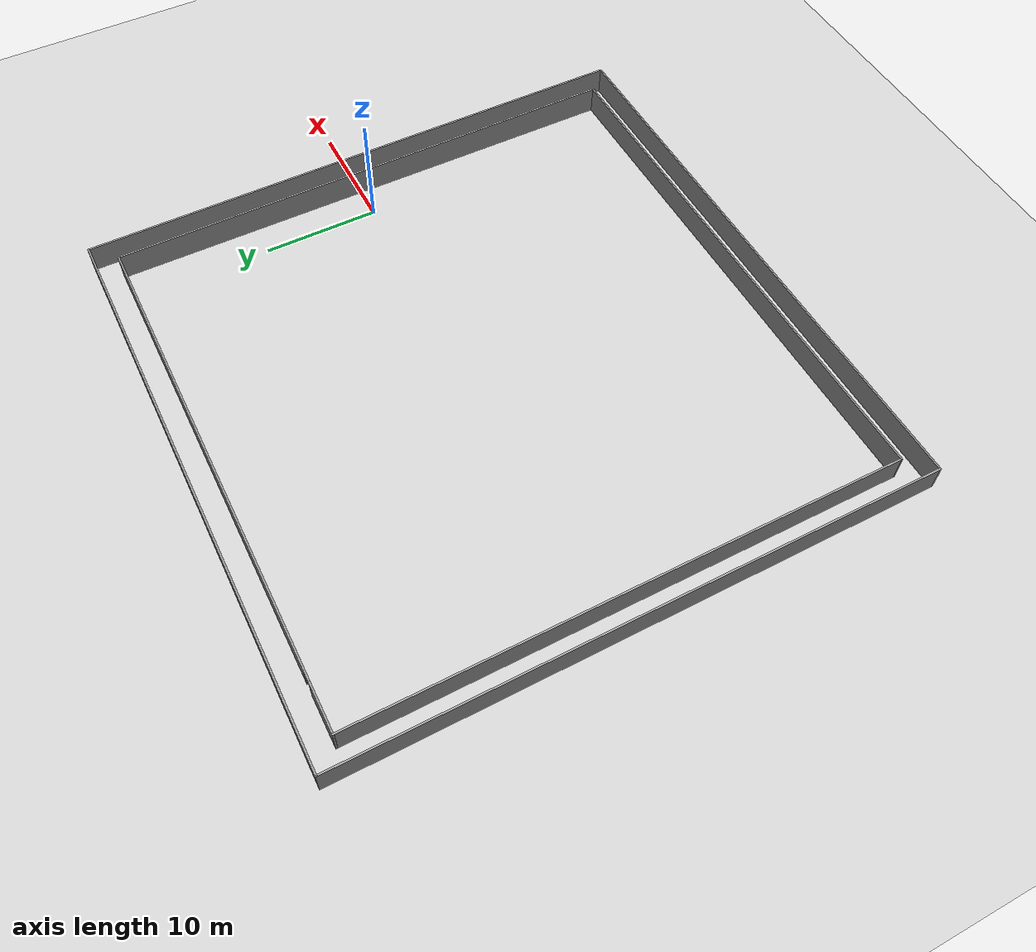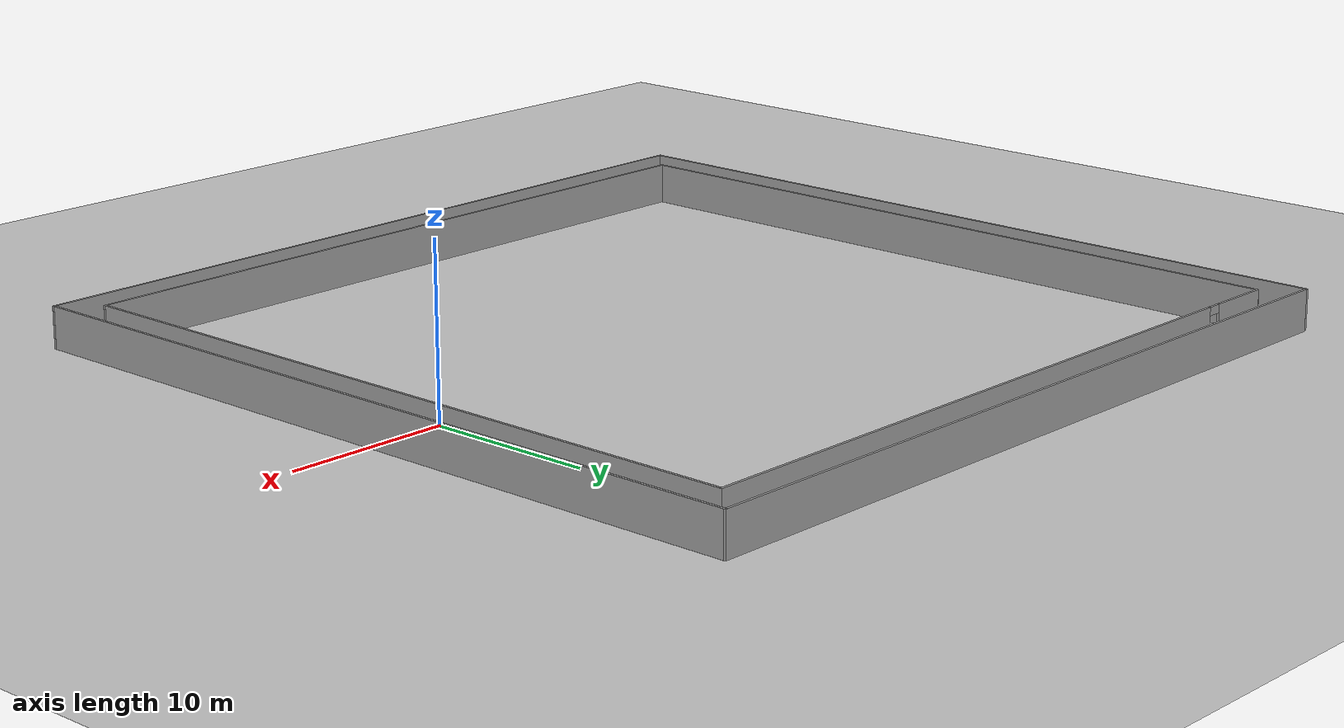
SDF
<sdf version="1.4">
 <world name="default">
  <light name="sun" type="directional">
   <pose>0 0 10 0 -0 0</pose>
   <diffuse>0.8 0.8 0.8 1</diffuse>
   <specular>0.2 0.2 0.2 1</specular>
   <attenuation>
    <range>1000</range>
    <constant>0.9</constant>
    <linear>0.01</linear>
    <quadratic>0.001</quadratic>
   </attenuation>
   <direction>-0.5 0.1 -0.9</direction>
  </light>
  <model name="ground_plane">
   <static>1</static>
   <link name="link">
    <collision name="collision">
     <geometry><plane><normal>0 0 1</normal><size>100 100</size></plane></geometry>
     <surface><friction><ode><mu>100</mu><mu2>50</mu2></ode></friction></surface>
    </collision>
    <visual name="visual">
     <cast_shadows>0</cast_shadows>
     <geometry><plane><normal>0 0 1</normal><size>100 100</size></plane></geometry>
     <material>
      <script><uri>file://media/materials/scripts/gazebo.material</uri><name>Gazebo/Grey</name></script>
     </material>
    </visual>
   </link>
  </model>
  <physics name="default_physics" default="0" type="ode">
   <max_step_size>0.001</max_step_size>
   <real_time_factor>1</real_time_factor>
   <real_time_update_rate>1000</real_time_update_rate>
   <gravity>0 0 -9.8</gravity>
  </physics>
  <scene><ambient>0.4 0.4 0.4 1</ambient><background>0.7 0.7 0.7 1</background><shadows>1</shadows></scene>
  <spherical_coordinates>
   <surface_model>EARTH_WGS84</surface_model>
   <latitude_deg>0</latitude_deg>
   <longitude_deg>0</longitude_deg>
   <elevation>0</elevation>
   <heading_deg>0</heading_deg>
  </spherical_coordinates>
  <model name="Rooms">
   <pose>-20.0679 -1.004 0 0 -0 0</pose>
   <link name="Wall_10">
    <pose>-0.000115 22.925 0 0 -0 0</pose>
    <visual name="Wall_10_Visual_0">
     <pose>-20.9482 0 1.25 0 -0 0</pose>
     <geometry><box><size>4.1036 0.15 2.5</size></box></geometry>
     <material>
      <script><uri>file://media/materials/scripts/gazebo.material</uri><name>Gazebo/Grey</name></script>
      <ambient>1 1 1 1</ambient>
     </material>
    </visual>
    <collision name="Wall_10_Collision_0">
     <geometry><box><size>4.1036 0.15 2.5</size></box></geometry>
     <pose>-20.9482 0 1.25 0 -0 0</pose>
    </collision>
    <visual name="Wall_10_Visual_1">
     <pose>2.5018 0 1.25 0 -0 0</pose>
     <geometry><box><size>40.9964 0.15 2.5</size></box></geometry>
     <material>
      <script><uri>file://media/materials/scripts/gazebo.material</uri><name>Gazebo/Grey</name></script>
      <ambient>1 1 1 1</ambient>
     </material>
    </visual>
    <collision name="Wall_10_Collision_1">
     <geometry><box><size>40.9964 0.15 2.5</size></box></geometry>
     <pose>2.5018 0 1.25 0 -0 0</pose>
    </collision>
    <visual name="Wall_10_Visual_2">
     <pose>-18.4464 0 2.25 0 -0 0</pose>
     <geometry><box><size>0.9 0.15 0.5</size></box></geometry>
     <material>
      <script><uri>file://media/materials/scripts/gazebo.material</uri><name>Gazebo/Grey</name></script>
      <ambient>1 1 1 1</ambient>
     </material>
    </visual>
    <collision name="Wall_10_Collision_2">
     <geometry><box><size>0.9 0.15 0.5</size></box></geometry>
     <pose>-18.4464 0 2.25 0 -0 0</pose>
    </collision>
   </link>
   <link name="Wall_11">
    <collision name="Wall_11_Collision">
     <geometry><box><size>46 0.15 2.5</size></box></geometry>
     <pose>0 0 1.25 0 -0 0</pose>
    </collision>
    <visual name="Wall_11_Visual">
     <pose>0 0 1.25 0 -0 0</pose>
     <geometry><box><size>46 0.15 2.5</size></box></geometry>
     <material>
      <script><uri>file://media/materials/scripts/gazebo.material</uri><name>Gazebo/Grey</name></script>
      <ambient>1 1 1 1</ambient>
     </material>
    </visual>
    <pose>22.9249 -0 0 0 0 -1.5708</pose>
   </link>
   <link name="Wall_12">
    <collision name="Wall_12_Collision">
     <geometry><box><size>46 0.15 2.5</size></box></geometry>
     <pose>0 0 1.25 0 -0 0</pose>
    </collision>
    <visual name="Wall_12_Visual">
     <pose>0 0 1.25 0 -0 0</pose>
     <geometry><box><size>46 0.15 2.5</size></box></geometry>
     <material>
      <script><uri>file://media/materials/scripts/gazebo.material</uri><name>Gazebo/Grey</name></script>
      <ambient>1 1 1 1</ambient>
     </material>
    </visual>
    <pose>-0.000115 -22.925 0 0 -0 3.14159</pose>
   </link>
   <link name="Wall_13">
    <collision name="Wall_13_Collision">
     <geometry><box><size>46 0.15 2.5</size></box></geometry>
     <pose>0 0 1.25 0 -0 0</pose>
    </collision>
    <visual name="Wall_13_Visual">
     <pose>0 0 1.25 0 -0 0</pose>
     <geometry><box><size>46 0.15 2.5</size></box></geometry>
     <material>
      <script><uri>file://media/materials/scripts/gazebo.material</uri><name>Gazebo/Grey</name></script>
      <ambient>1 1 1 1</ambient>
     </material>
    </visual>
    <pose>-22.9236 -0 0 0 -0 1.57073</pose>
   </link>
   <link name="Wall_5">
    <collision name="Wall_5_Collision">
     <geometry><box><size>50 0.15 2.5</size></box></geometry>
     <pose>0 0 1.25 0 -0 0</pose>
    </collision>
    <visual name="Wall_5_Visual">
     <pose>0 0 1.25 0 -0 0</pose>
     <geometry><box><size>50 0.15 2.5</size></box></geometry>
     <material>
      <script><uri>file://media/materials/scripts/gazebo.material</uri><name>Gazebo/Grey</name></script>
      <ambient>1 1 1 1</ambient>
     </material>
    </visual>
    <pose>0.000119 24.9248 0 0 -0 9e-06</pose>
   </link>
   <link name="Wall_6">
    <collision name="Wall_6_Collision">
     <geometry><box><size>50 0.15 2.5</size></box></geometry>
     <pose>0 0 1.25 0 -0 0</pose>
    </collision>
    <visual name="Wall_6_Visual">
     <pose>0 0 1.25 0 -0 0</pose>
     <geometry><box><size>50 0.15 2.5</size></box></geometry>
     <material>
      <script><uri>file://media/materials/scripts/gazebo.material</uri><name>Gazebo/Grey</name></script>
      <ambient>1 1 1 1</ambient>
     </material>
    </visual>
    <pose>24.9249 -0 0 0 0 -1.5708</pose>
   </link>
   <link name="Wall_7">
    <collision name="Wall_7_Collision">
     <geometry><box><size>50 0.15 2.5</size></box></geometry>
     <pose>0 0 1.25 0 -0 0</pose>
    </collision>
    <visual name="Wall_7_Visual">
     <pose>0 0 1.25 0 -0 0</pose>
     <geometry><box><size>50 0.15 2.5</size></box></geometry>
     <material>
      <script><uri>file://media/materials/scripts/gazebo.material</uri><name>Gazebo/Grey</name></script>
      <ambient>1 1 1 1</ambient>
     </material>
    </visual>
    <pose>-0.000115 -24.925 0 0 -0 3.14159</pose>
   </link>
   <link name="Wall_8">
    <collision name="Wall_8_Collision">
     <geometry><box><size>50 0.15 2.5</size></box></geometry>
     <pose>0 0 1.25 0 -0 0</pose>
    </collision>
    <visual name="Wall_8_Visual">
     <pose>0 0 1.25 0 -0 0</pose>
     <geometry><box><size>50 0.15 2.5</size></box></geometry>
     <material>
      <script><uri>file://media/materials/scripts/gazebo.material</uri><name>Gazebo/Grey</name></script>
      <ambient>1 1 1 1</ambient>
     </material>
    </visual>
    <pose>-24.9251 -0 0 0 -0 1.5708</pose>
   </link>
   <static>1</static>
  </model>
 </world>
</sdf>
